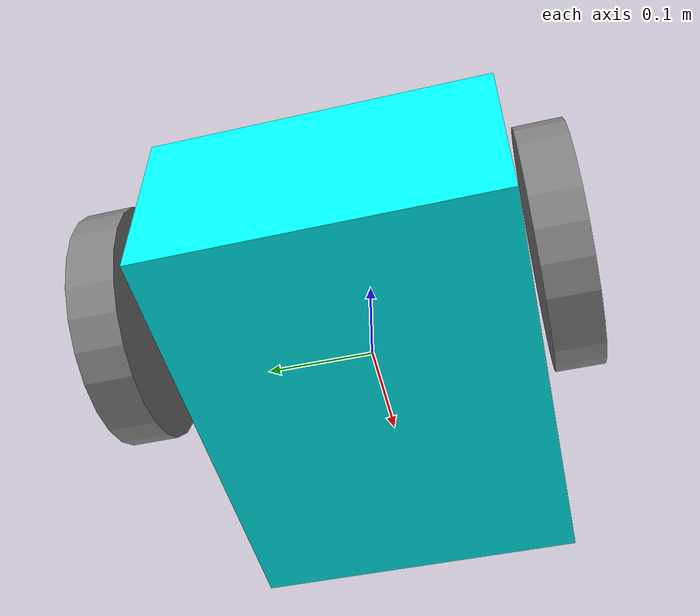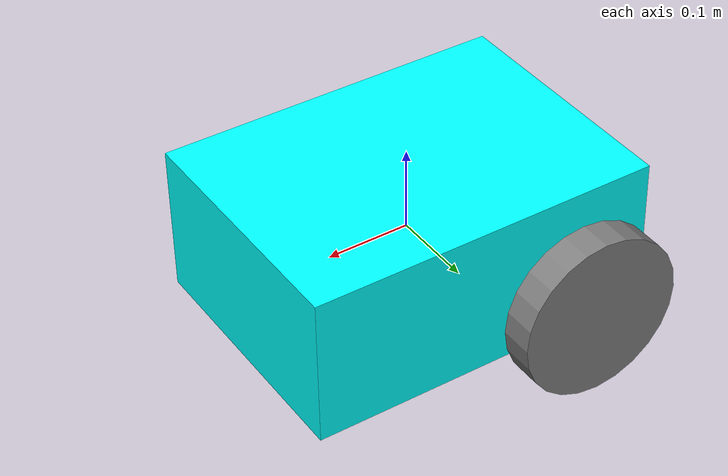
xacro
<?xml version="1.0" encoding="UTF-8"?>
<robot xmlns:xacro="http://www.ros.org/wiki/xacro">

   <!-- Define robot constants -->
   <xacro:property name="base_width" value="0.31"/>
   <xacro:property name="base_length" value="0.42"/>
   <xacro:property name="base_height" value="0.18"/>

   <xacro:property name="wheel_radius" value="0.10"/>
   <xacro:property name="wheel_width" value="0.04"/>
   <xacro:property name="wheel_ygap" value="0.025"/>
   <xacro:property name="wheel_zoff" value="0.05"/>
   <xacro:property name="wheel_xoff" value="0.12"/>

   <xacro:property name="caster_xoff" value="0.14"/>

   <!-- Define some commonly used intertial properties  -->
   <xacro:macro name="box_inertia" params="m w h d">
     <inertial>
       <origin xyz="0 0 0" rpy="${pi/2} 0 ${pi/2}"/>
       <mass value="${m}"/>
       <inertia ixx="${(m/12) * (h*h + d*d)}" ixy="0.0" ixz="0.0" iyy="${(m/12) * (w*w + d*d)}" iyz="0.0" izz="${(m/12) * (w*w + h*h)}"/>
     </inertial>
   </xacro:macro>

   <xacro:macro name="cylinder_inertia" params="m r h">
     <inertial>
       <origin xyz="0 0 0" rpy="${pi/2} 0 0" />
       <mass value="${m}"/>
       <inertia ixx="${(m/12) * (3*r*r + h*h)}" ixy = "0" ixz = "0" iyy="${(m/12) * (3*r*r + h*h)}" iyz = "0" izz="${(m/2) * (r*r)}"/>
     </inertial>
   </xacro:macro>

   <xacro:macro name="sphere_inertia" params="m r">
     <inertial>
       <mass value="${m}"/>
       <inertia ixx="${(2/5) * m * (r*r)}" ixy="0.0" ixz="0.0" iyy="${(2/5) * m * (r*r)}" iyz="0.0" izz="${(2/5) * m * (r*r)}"/>
     </inertial>
   </xacro:macro>

   <!-- Robot Base -->
   <link name="base_link">
    <visual>
      <geometry>
        <box size="${base_length} ${base_width} ${base_height}"/>
      </geometry>
      <material name="Cyan">
        <color rgba="0 1.0 1.0 1.0"/>
      </material>
    </visual>

    <collision>
      <geometry>
        <box size="${base_length} ${base_width} ${base_height}"/>
      </geometry>
    </collision>
  </link>

   <!-- Robot Footprint -->
  <link name="base_footprint"></link>

  <joint name="base_joint" type="fixed">
    <parent link="base_link"/>
    <child link="base_footprint"/>
    <origin xyz="0.0 0.0 ${-(wheel_radius+wheel_zoff)}" rpy="0 0 0"/>
  </joint>

  <!-- Wheels -->
  <xacro:macro name="wheel" params="prefix x_reflect y_reflect">
    <link name="${prefix}_link">
      <visual>
        <origin xyz="0 0 0" rpy="${pi/2} 0 0"/>
        <geometry>
            <cylinder radius="${wheel_radius}" length="${wheel_width}"/>
        </geometry>
        <material name="Gray">
          <color rgba="0.5 0.5 0.5 1.0"/>
        </material>
      </visual>

      <collision>
        <origin xyz="0 0 0" rpy="${pi/2} 0 0"/>
        <geometry>
          <cylinder radius="${wheel_radius}" length="${wheel_width}"/>
        </geometry>
      </collision>

      <xacro:cylinder_inertia m="0.5" r="${wheel_radius}" h="${wheel_width}"/>
    </link>

    <joint name="${prefix}_joint" type="continuous">
      <parent link="base_link"/>
      <child link="${prefix}_link"/>
      <origin xyz="${x_reflect*wheel_xoff} ${y_reflect*(base_width/2+wheel_ygap)} ${-wheel_zoff}" rpy="0 0 0"/>
      <axis xyz="0 1 0"/>
    </joint>
  </xacro:macro>

  <xacro:wheel prefix="drivewhl_l" x_reflect="-1" y_reflect="1" />
  <xacro:wheel prefix="drivewhl_r" x_reflect="-1" y_reflect="-1" />

</robot>
